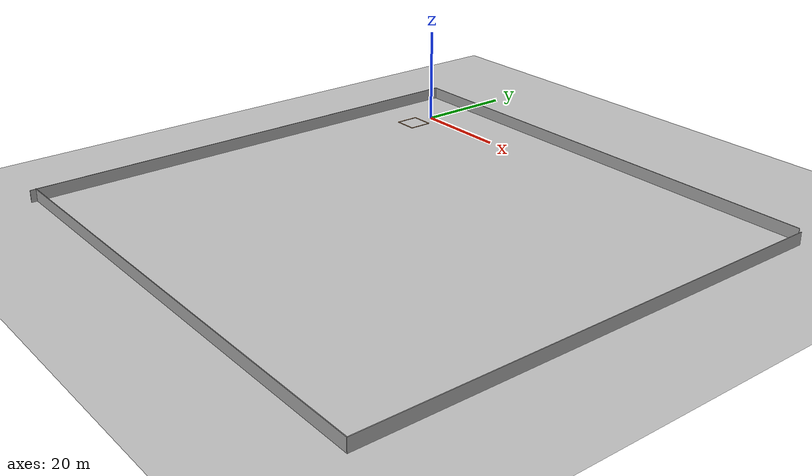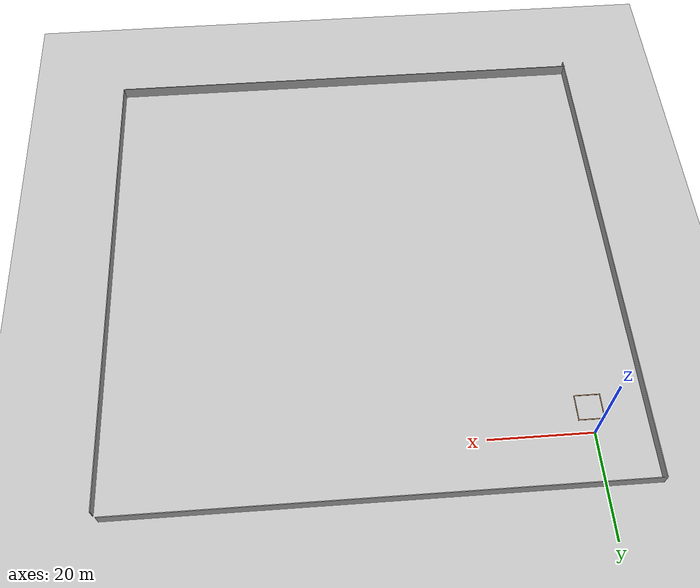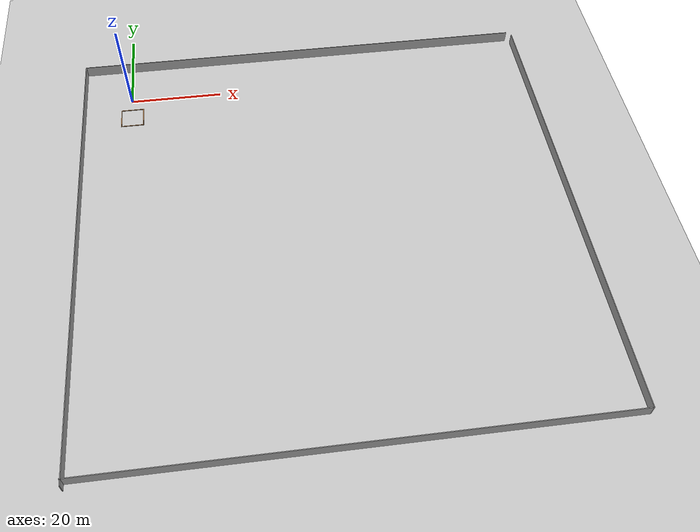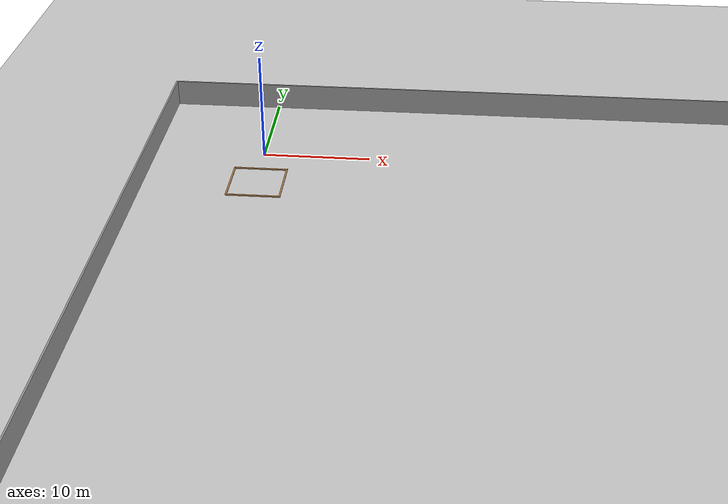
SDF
<sdf version="1.7">
 <world name="default">
  <model name="ground_plane">
   <static>1</static>
   <link name="link">
    <collision name="collision">
     <geometry><plane><normal>0 0 1</normal><size>100 100</size></plane></geometry>
     <surface><friction><ode><mu>100</mu><mu2>50</mu2></ode></friction></surface>
    </collision>
    <visual name="visual">
     <cast_shadows>0</cast_shadows>
     <geometry><plane><normal>0 0 1</normal><size>100 100</size></plane></geometry>
     <material>
      <script><uri>file://media/materials/scripts/gazebo.material</uri><name>Gazebo/Grey</name></script>
     </material>
    </visual>
   </link>
  </model>
  <light name="sun" type="directional">
   <pose>0 0 10 0 -0 0</pose>
   <diffuse>0.8 0.8 0.8 1</diffuse>
   <specular>0.2 0.2 0.2 1</specular>
   <attenuation>
    <range>1000</range>
    <constant>0.9</constant>
    <linear>0.01</linear>
    <quadratic>0.001</quadratic>
   </attenuation>
   <direction>-0.5 0.1 -0.9</direction>
   <spot><inner_angle>0</inner_angle><outer_angle>0</outer_angle><falloff>0</falloff></spot>
  </light>
  <scene><shadows>0</shadows><ambient>0.4 0.4 0.4 1</ambient><background>0.7 0.7 0.7 1</background></scene>
  <physics type="ode">
   <real_time_update_rate>1000</real_time_update_rate>
   <max_step_size>0.001</max_step_size>
   <real_time_factor>1</real_time_factor>
   <ode>
    <solver>
     <type>quick</type>
     <iters>150</iters>
     <precon_iters>0</precon_iters>
     <sor>1.4</sor>
     <use_dynamic_moi_rescaling>1</use_dynamic_moi_rescaling>
    </solver>
    <constraints>
     <cfm>1e-05</cfm>
     <erp>0.2</erp>
     <contact_max_correcting_vel>2000</contact_max_correcting_vel>
     <contact_surface_layer>0.01</contact_surface_layer>
    </constraints>
   </ode>
  </physics>
  <gravity>0 0 -9.8</gravity>
  <magnetic_field>6e-06 2.3e-05 -4.2e-05</magnetic_field>
  <atmosphere type="adiabatic"/>
  <audio><device>default</device></audio>
  <spherical_coordinates>
   <surface_model>EARTH_WGS84</surface_model>
   <latitude_deg>0</latitude_deg>
   <longitude_deg>0</longitude_deg>
   <elevation>0</elevation>
   <heading_deg>0</heading_deg>
  </spherical_coordinates>
  <model name="turtlebot3_square">
   <pose>0.10495 -5.13998 0 0 -0 0</pose>
   <link name="Wall_1">
    <collision name="Wall_1_Collision">
     <geometry><box><size>5 0.15 0.1</size></box></geometry>
     <pose>0 0 0.05 0 -0 0</pose>
    </collision>
    <visual name="Wall_1_Visual">
     <pose>0 0 0.05 0 -0 0</pose>
     <geometry><box><size>5 0.15 0.1</size></box></geometry>
     <material>
      <script><uri>file://media/materials/scripts/gazebo.material</uri><name>Gazebo/Wood</name></script>
      <ambient>1 1 1 1</ambient>
     </material>
    </visual>
    <pose>-2.425 0 0 0 -0 1.5708</pose>
   </link>
   <link name="Wall_2">
    <collision name="Wall_2_Collision">
     <geometry><box><size>5 0.15 0.1</size></box></geometry>
     <pose>0 0 0.05 0 -0 0</pose>
    </collision>
    <visual name="Wall_2_Visual">
     <pose>0 0 0.05 0 -0 0</pose>
     <geometry><box><size>5 0.15 0.1</size></box></geometry>
     <material>
      <script><uri>file://media/materials/scripts/gazebo.material</uri><name>Gazebo/Wood</name></script>
      <ambient>1 1 1 1</ambient>
     </material>
    </visual>
    <pose>0 2.425 0 0 -0 0</pose>
   </link>
   <link name="Wall_3">
    <collision name="Wall_3_Collision">
     <geometry><box><size>5 0.15 0.1</size></box></geometry>
     <pose>0 0 0.05 0 -0 0</pose>
    </collision>
    <visual name="Wall_3_Visual">
     <pose>0 0 0.05 0 -0 0</pose>
     <geometry><box><size>5 0.15 0.1</size></box></geometry>
     <material>
      <script><uri>file://media/materials/scripts/gazebo.material</uri><name>Gazebo/Wood</name></script>
      <ambient>1 1 1 1</ambient>
     </material>
    </visual>
    <pose>2.425 0 0 0 0 -1.5708</pose>
   </link>
   <link name="Wall_4">
    <collision name="Wall_4_Collision">
     <geometry><box><size>5 0.15 0.1</size></box></geometry>
     <pose>0 0 0.05 0 -0 0</pose>
    </collision>
    <visual name="Wall_4_Visual">
     <pose>0 0 0.05 0 -0 0</pose>
     <geometry><box><size>5 0.15 0.1</size></box></geometry>
     <material>
      <script><uri>file://media/materials/scripts/gazebo.material</uri><name>Gazebo/Wood</name></script>
      <ambient>1 1 1 1</ambient>
     </material>
    </visual>
    <pose>0 -2.425 0 0 -0 3.14159</pose>
   </link>
   <static>1</static>
  </model>
  <model name="Untitled_0">
   <pose>40.069 -39.935 0 0 -0 0</pose>
   <link name="Wall_0">
    <collision name="Wall_0_Collision">
     <geometry><box><size>100 0.15 2.5</size></box></geometry>
     <pose>0 0 1.25 0 -0 0</pose>
    </collision>
    <visual name="Wall_0_Visual">
     <pose>0 0 1.25 0 -0 0</pose>
     <geometry><box><size>100 0.15 2.5</size></box></geometry>
     <material>
      <script><uri>file://media/materials/scripts/gazebo.material</uri><name>Gazebo/Grey</name></script>
      <ambient>1 1 1 1</ambient>
     </material>
     <meta><layer>0</layer></meta>
    </visual>
    <pose>-50.412 -2e-06 0 0 -0 -1.5708</pose>
   </link>
   <link name="Wall_2">
    <collision name="Wall_2_Collision">
     <geometry><box><size>100 0.15 2.5</size></box></geometry>
     <pose>0 0 1.25 0 -0 0</pose>
    </collision>
    <visual name="Wall_2_Visual">
     <pose>0 0 1.25 0 -0 0</pose>
     <geometry><box><size>100 0.15 2.5</size></box></geometry>
     <material>
      <script><uri>file://media/materials/scripts/gazebo.material</uri><name>Gazebo/Grey</name></script>
      <ambient>1 1 1 1</ambient>
     </material>
     <meta><layer>0</layer></meta>
    </visual>
    <pose>-0.486969 49.925 0 0 -0 0</pose>
   </link>
   <link name="Wall_6">
    <collision name="Wall_6_Collision">
     <geometry><box><size>101.25 0.15 2.5</size></box></geometry>
     <pose>0 0 1.25 0 -0 0</pose>
    </collision>
    <visual name="Wall_6_Visual">
     <pose>0 0 1.25 0 -0 0</pose>
     <geometry><box><size>101.25 0.15 2.5</size></box></geometry>
     <material>
      <script><uri>file://media/materials/scripts/gazebo.material</uri><name>Gazebo/Grey</name></script>
      <ambient>1 1 1 1</ambient>
     </material>
     <meta><layer>0</layer></meta>
    </visual>
    <pose>0 -48.7603 0 0 -0 0</pose>
   </link>
   <link name="Wall_7">
    <collision name="Wall_7_Collision">
     <geometry><box><size>97.75 0.15 2.5</size></box></geometry>
     <pose>0 0 1.25 0 -0 0</pose>
    </collision>
    <visual name="Wall_7_Visual">
     <pose>0 0 1.25 0 -0 0</pose>
     <geometry><box><size>97.75 0.15 2.5</size></box></geometry>
     <material>
      <script><uri>file://media/materials/scripts/gazebo.material</uri><name>Gazebo/Grey</name></script>
      <ambient>1 1 1 1</ambient>
     </material>
     <meta><layer>0</layer></meta>
    </visual>
    <pose>50.55 0.03967 0 0 -0 1.5708</pose>
   </link>
   <static>1</static>
  </model>
 </world>
</sdf>
